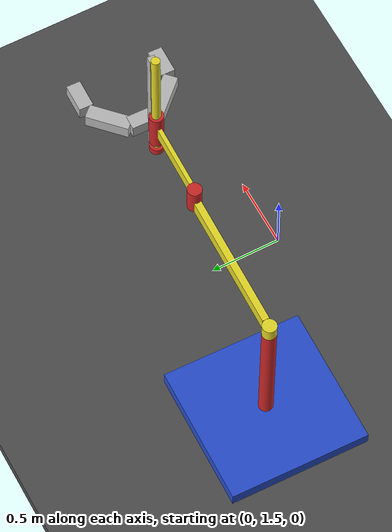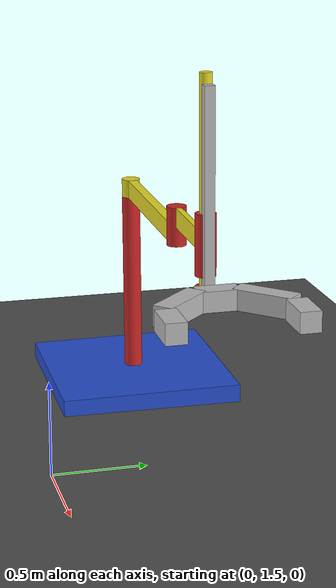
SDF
<sdf version="1.6">
 <world name="default">
  <model name="ground_plane">
   <static>1</static>
   <link name="link">
    <collision name="collision">
     <geometry><plane><normal>0 0 1</normal><size>100 100</size></plane></geometry>
     <surface>
      <contact><collide_bitmask>65535</collide_bitmask></contact>
      <friction><ode><mu>100</mu><mu2>50</mu2></ode></friction>
     </surface>
    </collision>
    <visual name="visual">
     <cast_shadows>0</cast_shadows>
     <geometry><plane><normal>0 0 1</normal><size>100 100</size></plane></geometry>
     <material>
      <script><uri>file://media/materials/scripts/gazebo.material</uri><name>Gazebo/Grey</name></script>
     </material>
    </visual>
   </link>
  </model>
  <model name="asphalt_plane">
   <static>1</static>
   <link name="link">
    <collision name="collision"><geometry><box><size>20 20 0.1</size></box></geometry></collision>
    <visual name="visual">
     <cast_shadows>0</cast_shadows>
     <geometry><box><size>20 20 0.1</size></box></geometry>
     <material>
      <script>
       <uri>model://asphalt_plane/materials/scripts</uri>
       <uri>model://asphalt_plane/materials/textures</uri>
       <name>vrc/asphalt</name>
      </script>
     </material>
    </visual>
   </link>
   <pose>0.045515 0.016583 0 0 -0 0</pose>
  </model>
  <model name="simple_arm_gripper">
   <link name="simple_arm::arm_base">
    <inertial>
     <pose>0 0 0.00099 0 -0 0</pose>
     <inertia><ixx>1.11</ixx><ixy>0</ixy><ixz>0</ixz><iyy>100.11</iyy><iyz>0</iyz><izz>1.01</izz></inertia>
     <mass>101</mass>
    </inertial>
    <collision name="arm_base_geom">
     <pose>0 0 0.05 0 -0 0</pose>
     <geometry><box><size>1 1 0.1</size></box></geometry>
    </collision>
    <visual name="arm_base_geom_visual">
     <pose>0 0 0.05 0 -0 0</pose>
     <geometry><box><size>1 1 0.1</size></box></geometry>
     <material>
      <script><uri>file://media/materials/scripts/gazebo.material</uri><name>Gazebo/Blue</name></script>
     </material>
    </visual>
    <collision name="arm_base_geom_arm_trunk">
     <pose>0 0 0.6 0 -0 0</pose>
     <geometry><cylinder><radius>0.05</radius><length>1</length></cylinder></geometry>
    </collision>
    <visual name="arm_base_geom_arm_trunk_visual">
     <pose>0 0 0.6 0 -0 0</pose>
     <geometry><cylinder><radius>0.05</radius><length>1</length></cylinder></geometry>
     <material>
      <script><uri>file://media/materials/scripts/gazebo.material</uri><name>Gazebo/Red</name></script>
     </material>
    </visual>
   </link>
   <link name="simple_arm::arm_shoulder_pan">
    <pose>0 0 1.1 0 -0 0</pose>
    <inertial>
     <pose>0.045455 0 0 0 -0 0</pose>
     <inertia><ixx>0.011</ixx><ixy>0</ixy><ixz>0</ixz><iyy>0.0225</iyy><iyz>0</iyz><izz>0.0135</izz></inertia>
     <mass>1.1</mass>
    </inertial>
    <collision name="arm_shoulder_pan_geom">
     <pose>0 0 0.05 0 -0 0</pose>
     <geometry><cylinder><radius>0.05</radius><length>0.1</length></cylinder></geometry>
    </collision>
    <visual name="arm_shoulder_pan_geom_visual">
     <pose>0 0 0.05 0 -0 0</pose>
     <geometry><cylinder><radius>0.05</radius><length>0.1</length></cylinder></geometry>
     <material>
      <script><uri>file://media/materials/scripts/gazebo.material</uri><name>Gazebo/Yellow</name></script>
     </material>
    </visual>
    <collision name="arm_shoulder_pan_geom_arm_shoulder">
     <pose>0.55 0 0.05 0 -0 0</pose>
     <geometry><box><size>1 0.05 0.1</size></box></geometry>
    </collision>
    <visual name="arm_shoulder_pan_geom_arm_shoulder_visual">
     <pose>0.55 0 0.05 0 -0 0</pose>
     <geometry><box><size>1 0.05 0.1</size></box></geometry>
     <material>
      <script><uri>file://media/materials/scripts/gazebo.material</uri><name>Gazebo/Yellow</name></script>
     </material>
    </visual>
   </link>
   <link name="simple_arm::arm_elbow_pan">
    <pose>1.05 0 1.1 0 -0 0</pose>
    <inertial>
     <pose>0.0875 0 0.083333 0 -0 0</pose>
     <inertia>
      <ixx>0.031</ixx>
      <ixy>0</ixy>
      <ixz>0.005</ixz>
      <iyy>0.07275</iyy>
      <iyz>0</iyz>
      <izz>0.04475</izz>
     </inertia>
     <mass>1.2</mass>
    </inertial>
    <collision name="arm_elbow_pan_geom">
     <pose>0 0 0.1 0 -0 0</pose>
     <geometry><cylinder><radius>0.05</radius><length>0.2</length></cylinder></geometry>
    </collision>
    <visual name="arm_elbow_pan_geom_visual">
     <pose>0 0 0.1 0 -0 0</pose>
     <geometry><cylinder><radius>0.05</radius><length>0.2</length></cylinder></geometry>
     <material>
      <script><uri>file://media/materials/scripts/gazebo.material</uri><name>Gazebo/Red</name></script>
     </material>
    </visual>
    <collision name="arm_elbow_pan_geom_arm_elbow">
     <pose>0.3 0 0.15 0 -0 0</pose>
     <geometry><box><size>0.5 0.03 0.1</size></box></geometry>
    </collision>
    <visual name="arm_elbow_pan_geom_arm_elbow_visual">
     <pose>0.3 0 0.15 0 -0 0</pose>
     <geometry><box><size>0.5 0.03 0.1</size></box></geometry>
     <material>
      <script><uri>file://media/materials/scripts/gazebo.material</uri><name>Gazebo/Yellow</name></script>
     </material>
    </visual>
    <collision name="arm_elbow_pan_geom_arm_wrist">
     <pose>0.55 0 0.15 0 -0 0</pose>
     <geometry><cylinder><radius>0.05</radius><length>0.3</length></cylinder></geometry>
    </collision>
    <visual name="arm_elbow_pan_geom_arm_wrist_visual">
     <pose>0.55 0 0.15 0 -0 0</pose>
     <geometry><cylinder><radius>0.05</radius><length>0.3</length></cylinder></geometry>
     <material>
      <script><uri>file://media/materials/scripts/gazebo.material</uri><name>Gazebo/Red</name></script>
     </material>
    </visual>
   </link>
   <link name="simple_arm::arm_wrist_lift">
    <pose>1.6 0 1.05 0 -0 0</pose>
    <inertial>
     <inertia><ixx>0.01</ixx><ixy>0</ixy><ixz>0</ixz><iyy>0.01</iyy><iyz>0</iyz><izz>0.001</izz></inertia>
     <mass>0.1</mass>
    </inertial>
    <collision name="arm_wrist_lift_geom">
     <pose>0 0 0.5 0 -0 0</pose>
     <geometry><cylinder><radius>0.03</radius><length>1</length></cylinder></geometry>
    </collision>
    <visual name="arm_wrist_lift_geom_visual">
     <pose>0 0 0.5 0 -0 0</pose>
     <geometry><cylinder><radius>0.03</radius><length>1</length></cylinder></geometry>
     <material>
      <script><uri>file://media/materials/scripts/gazebo.material</uri><name>Gazebo/Yellow</name></script>
     </material>
    </visual>
   </link>
   <link name="simple_arm::arm_wrist_roll">
    <pose>1.6 0 1 0 -0 0</pose>
    <inertial>
     <inertia><ixx>0.01</ixx><ixy>0</ixy><ixz>0</ixz><iyy>0.01</iyy><iyz>0</iyz><izz>0.001</izz></inertia>
     <mass>0.1</mass>
    </inertial>
    <collision name="arm_wrist_roll_geom">
     <pose>0 0 0.025 0 -0 0</pose>
     <geometry><cylinder><radius>0.05</radius><length>0.05</length></cylinder></geometry>
    </collision>
    <visual name="arm_wrist_roll_geom_visual">
     <pose>0 0 0.025 0 -0 0</pose>
     <geometry><cylinder><radius>0.05</radius><length>0.05</length></cylinder></geometry>
     <material>
      <script><uri>file://media/materials/scripts/gazebo.material</uri><name>Gazebo/Red</name></script>
     </material>
    </visual>
   </link>
   <joint name="simple_arm::arm_shoulder_pan_joint" type="revolute">
    <parent>simple_arm::arm_base</parent>
    <child>simple_arm::arm_shoulder_pan</child>
    <axis>
     <dynamics>
      <damping>1</damping>
      <friction>0</friction>
      <spring_reference>0</spring_reference>
      <spring_stiffness>0</spring_stiffness>
     </dynamics>
     <xyz>0 0 1</xyz>
     <use_parent_model_frame>1</use_parent_model_frame>
     <limit><lower>-1e+16</lower><upper>1e+16</upper></limit>
    </axis>
   </joint>
   <joint name="simple_arm::arm_elbow_pan_joint" type="revolute">
    <parent>simple_arm::arm_shoulder_pan</parent>
    <child>simple_arm::arm_elbow_pan</child>
    <axis>
     <dynamics>
      <damping>1</damping>
      <friction>0</friction>
      <spring_reference>0</spring_reference>
      <spring_stiffness>0</spring_stiffness>
     </dynamics>
     <xyz>0 0 1</xyz>
     <use_parent_model_frame>1</use_parent_model_frame>
     <limit><lower>-1e+16</lower><upper>1e+16</upper></limit>
    </axis>
   </joint>
   <joint name="simple_arm::arm_wrist_lift_joint" type="prismatic">
    <parent>simple_arm::arm_elbow_pan</parent>
    <child>simple_arm::arm_wrist_lift</child>
    <axis>
     <dynamics>
      <damping>1</damping>
      <friction>0</friction>
      <spring_reference>0</spring_reference>
      <spring_stiffness>0</spring_stiffness>
     </dynamics>
     <limit><lower>-0.8</lower><upper>0.1</upper></limit>
     <xyz>0 0 1</xyz>
     <use_parent_model_frame>1</use_parent_model_frame>
    </axis>
   </joint>
   <joint name="simple_arm::arm_wrist_roll_joint" type="revolute">
    <parent>simple_arm::arm_wrist_lift</parent>
    <child>simple_arm::arm_wrist_roll</child>
    <axis>
     <dynamics>
      <damping>1</damping>
      <friction>0</friction>
      <spring_reference>0</spring_reference>
      <spring_stiffness>0</spring_stiffness>
     </dynamics>
     <limit><lower>-2.99999</lower><upper>2.99999</upper></limit>
     <xyz>0 0 1</xyz>
     <use_parent_model_frame>1</use_parent_model_frame>
    </axis>
   </joint>
   <link name="simple_gripper::riser">
    <pose>1.65 0 1.5 0 -0 0</pose>
    <inertial>
     <mass>10</mass>
     <inertia><ixx>1</ixx><ixy>0</ixy><ixz>0</ixz><iyy>1</iyy><iyz>0</iyz><izz>1</izz></inertia>
    </inertial>
    <collision name="collision">
     <geometry><box><size>0.05 0.05 1</size></box></geometry>
     <surface><contact><ode><max_vel>0</max_vel></ode></contact></surface>
    </collision>
    <visual name="visual"><geometry><box><size>0.05 0.05 1</size></box></geometry></visual>
   </link>
   <link name="simple_gripper::palm">
    <pose>1.8 0 1.05 0 -0 0</pose>
    <inertial>
     <mass>0.5</mass>
     <inertia><ixx>1</ixx><ixy>0</ixy><ixz>0</ixz><iyy>1</iyy><iyz>0</iyz><izz>1</izz></inertia>
    </inertial>
    <collision name="collision">
     <geometry><box><size>0.1 0.2 0.1</size></box></geometry>
     <surface><contact><ode><max_vel>0</max_vel></ode></contact></surface>
    </collision>
    <visual name="visual"><geometry><box><size>0.1 0.2 0.1</size></box></geometry></visual>
   </link>
   <link name="simple_gripper::left_finger">
    <pose>1.9 0.2 1.05 0 0 -0.78539</pose>
    <inertial>
     <mass>0.1</mass>
     <inertia><ixx>1</ixx><ixy>0</ixy><ixz>0</ixz><iyy>1</iyy><iyz>0</iyz><izz>1</izz></inertia>
    </inertial>
    <collision name="collision">
     <geometry><box><size>0.1 0.3 0.1</size></box></geometry>
     <surface>
      <friction><ode><mu>0.1</mu><mu2>0</mu2></ode></friction>
      <contact><ode><max_vel>0</max_vel></ode></contact>
     </surface>
    </collision>
    <visual name="visual"><geometry><box><size>0.1 0.3 0.1</size></box></geometry></visual>
   </link>
   <link name="simple_gripper::left_finger_tip">
    <pose>2.136 0.3 1.05 0 -0 1.5707</pose>
    <inertial>
     <mass>0.5</mass>
     <inertia><ixx>1</ixx><ixy>0</ixy><ixz>0</ixz><iyy>1</iyy><iyz>0</iyz><izz>1</izz></inertia>
    </inertial>
    <collision name="collision">
     <geometry><box><size>0.1 0.2 0.1</size></box></geometry>
     <surface>
      <friction><ode><mu>0.1</mu><mu2>0</mu2></ode></friction>
      <contact><ode><max_vel>0</max_vel></ode></contact>
     </surface>
    </collision>
    <visual name="visual"><geometry><box><size>0.1 0.2 0.1</size></box></geometry></visual>
   </link>
   <link name="simple_gripper::right_finger">
    <pose>1.9 -0.2 1.05 0 -0 0.78539</pose>
    <inertial>
     <mass>0.1</mass>
     <inertia><ixx>1</ixx><ixy>0</ixy><ixz>0</ixz><iyy>1</iyy><iyz>0</iyz><izz>1</izz></inertia>
    </inertial>
    <collision name="collision">
     <geometry><box><size>0.1 0.3 0.1</size></box></geometry>
     <surface>
      <friction><ode><mu>0.1</mu><mu2>0</mu2></ode></friction>
      <contact><ode><max_vel>0</max_vel></ode></contact>
     </surface>
    </collision>
    <visual name="visual"><geometry><box><size>0.1 0.3 0.1</size></box></geometry></visual>
   </link>
   <link name="simple_gripper::right_finger_tip">
    <pose>2.136 -0.3 1.05 0 -0 1.5707</pose>
    <inertial>
     <mass>0.1</mass>
     <inertia><ixx>1</ixx><ixy>0</ixy><ixz>0</ixz><iyy>1</iyy><iyz>0</iyz><izz>1</izz></inertia>
    </inertial>
    <collision name="collision">
     <geometry><box><size>0.1 0.2 0.1</size></box></geometry>
     <surface>
      <friction><ode><mu>0.1</mu><mu2>0</mu2></ode></friction>
      <contact><ode><max_vel>0</max_vel></ode></contact>
     </surface>
    </collision>
    <visual name="visual"><geometry><box><size>0.1 0.2 0.1</size></box></geometry></visual>
   </link>
   <joint name="simple_gripper::palm_left_finger" type="revolute">
    <pose>0 -0.15 0 0 -0 0</pose>
    <child>simple_gripper::left_finger</child>
    <parent>simple_gripper::palm</parent>
    <axis>
     <limit><lower>-0.8</lower><upper>0.8</upper></limit>
     <xyz>0 0 1</xyz>
     <use_parent_model_frame>1</use_parent_model_frame>
     <dynamics><spring_reference>0</spring_reference><spring_stiffness>0</spring_stiffness></dynamics>
    </axis>
   </joint>
   <joint name="simple_gripper::left_finger_tip" type="revolute">
    <pose>0 0.1 0 0 -0 0</pose>
    <child>simple_gripper::left_finger_tip</child>
    <parent>simple_gripper::left_finger</parent>
    <axis>
     <limit><lower>-0.8</lower><upper>0.8</upper></limit>
     <xyz>0 0 1</xyz>
     <use_parent_model_frame>1</use_parent_model_frame>
     <dynamics><spring_reference>0</spring_reference><spring_stiffness>0</spring_stiffness></dynamics>
    </axis>
   </joint>
   <joint name="simple_gripper::palm_right_finger" type="revolute">
    <pose>0 0.15 0 0 -0 0</pose>
    <child>simple_gripper::right_finger</child>
    <parent>simple_gripper::palm</parent>
    <axis>
     <limit><lower>-0.8</lower><upper>0.8</upper></limit>
     <xyz>0 0 1</xyz>
     <use_parent_model_frame>1</use_parent_model_frame>
     <dynamics><spring_reference>0</spring_reference><spring_stiffness>0</spring_stiffness></dynamics>
    </axis>
   </joint>
   <joint name="simple_gripper::right_finger_tip" type="revolute">
    <pose>0 0.1 0 0 -0 0</pose>
    <child>simple_gripper::right_finger_tip</child>
    <parent>simple_gripper::right_finger</parent>
    <axis>
     <limit><lower>-0.8</lower><upper>0.8</upper></limit>
     <xyz>0 0 1</xyz>
     <use_parent_model_frame>1</use_parent_model_frame>
     <dynamics><spring_reference>0</spring_reference><spring_stiffness>0</spring_stiffness></dynamics>
    </axis>
   </joint>
   <joint name="simple_gripper::palm_riser" type="prismatic">
    <child>simple_gripper::palm</child>
    <parent>simple_gripper::riser</parent>
    <axis>
     <limit><lower>0</lower><upper>0.9</upper></limit>
     <xyz>0 0 1</xyz>
     <use_parent_model_frame>1</use_parent_model_frame>
     <dynamics><spring_reference>0</spring_reference><spring_stiffness>0</spring_stiffness></dynamics>
    </axis>
   </joint>
   <gripper name="simple_gripper">
    <grasp_check>
     <detach_steps>40</detach_steps>
     <attach_steps>20</attach_steps>
     <min_contact_count>2</min_contact_count>
    </grasp_check>
    <gripper_link>simple_gripper::right_finger</gripper_link>
    <gripper_link>simple_gripper::right_finger_tip</gripper_link>
    <gripper_link>simple_gripper::left_finger</gripper_link>
    <gripper_link>simple_gripper::left_finger_tip</gripper_link>
    <palm_link>simple_gripper::palm</palm_link>
   </gripper>
   <plugin name="simple_arm_plugin" filename="libJointTrajectoryPlugin.so"/>
   <joint name="arm_gripper_joint" type="revolute">
    <parent>simple_arm::arm_wrist_roll</parent>
    <child>simple_gripper::riser</child>
    <axis>
     <limit><lower>0</lower><upper>0</upper></limit>
     <xyz>0 0 1</xyz>
     <use_parent_model_frame>1</use_parent_model_frame>
     <dynamics><spring_reference>0</spring_reference><spring_stiffness>0</spring_stiffness></dynamics>
    </axis>
   </joint>
   <pose>-1.12638 2.20665 0.045568 0.010509 0.000887 -0.019727</pose>
  </model>
 </world>
</sdf>
